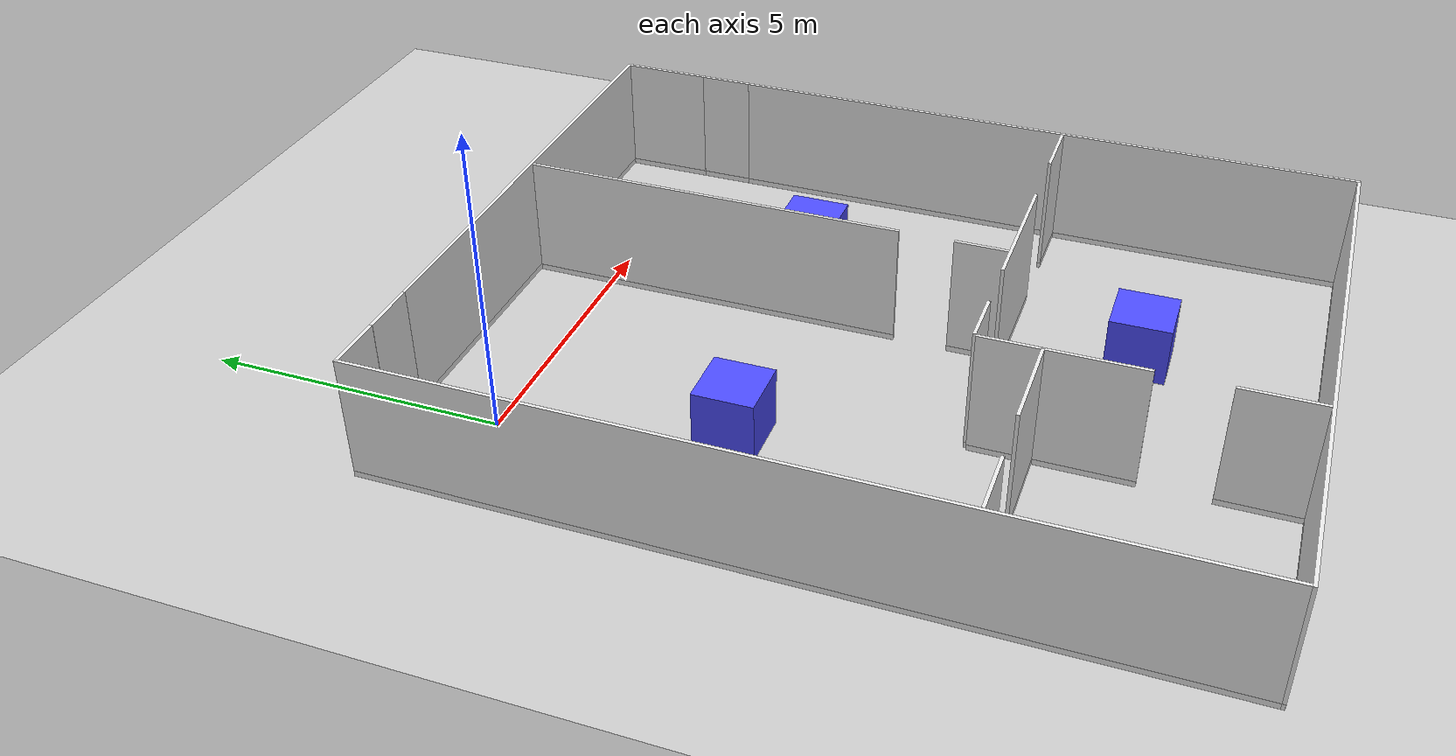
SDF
<sdf version="1.6">
 <world name="default">
  <light name="sun" type="directional">
   <pose>0 0 10 0 -0 0</pose>
   <diffuse>0.8 0.8 0.8 1</diffuse>
   <specular>0.1 0.1 0.1 1</specular>
   <attenuation>
    <range>1000</range>
    <constant>0.9</constant>
    <linear>0.01</linear>
    <quadratic>0.001</quadratic>
   </attenuation>
   <direction>-0.5 0.5 -1</direction>
  </light>
  <model name="ground_plane">
   <static>1</static>
   <link name="link">
    <collision name="collision">
     <geometry><plane><normal>0 0 1</normal><size>100 100</size></plane></geometry>
     <surface><friction><ode><mu>100</mu><mu2>50</mu2></ode></friction></surface>
    </collision>
    <visual name="visual">
     <cast_shadows>0</cast_shadows>
     <geometry><plane><normal>0 0 1</normal><size>100 100</size></plane></geometry>
     <material>
      <script><uri>file://media/materials/scripts/gazebo.material</uri><name>Gazebo/Grey</name></script>
     </material>
    </visual>
   </link>
  </model>
  <gravity>0 0 -9.8</gravity>
  <magnetic_field>6e-06 2.3e-05 -4.2e-05</magnetic_field>
  <atmosphere type="adiabatic"/>
  <physics name="default_physics" default="0" type="ode">
   <max_step_size>0.001</max_step_size>
   <real_time_factor>1</real_time_factor>
   <real_time_update_rate>1000</real_time_update_rate>
  </physics>
  <scene><ambient>0.4 0.4 0.4 1</ambient><background>0.7 0.7 0.7 1</background><shadows>1</shadows></scene>
  <spherical_coordinates>
   <surface_model>EARTH_WGS84</surface_model>
   <latitude_deg>0</latitude_deg>
   <longitude_deg>0</longitude_deg>
   <elevation>0</elevation>
   <heading_deg>0</heading_deg>
  </spherical_coordinates>
  <model name="full_outside_wall">
   <link name="link">
    <inertial>
     <mass>50</mass>
     <inertia><ixx>1</ixx><ixy>0</ixy><ixz>0</ixz><iyy>1</iyy><iyz>0</iyz><izz>1</izz></inertia>
    </inertial>
    <visual name="x00_13y00_bottom_frame">
     <pose>5.0375 -0.0275 0.05 0 -0 0</pose>
     <geometry><box><size>10.185 0.055 0.1</size></box></geometry>
     <material>
      <script><uri>model://base_materials/color/scripts</uri><name>hsr_color/white</name></script>
     </material>
    </visual>
    <collision name="x00_13y00_collision_bottom_frame">
     <pose>5.0375 -0.0275 0.05 0 -0 0</pose>
     <geometry><box><size>10.185 0.055 0.1</size></box></geometry>
    </collision>
    <visual name="wall_x00_13y00">
     <pose>5.0375 -0.0275 1.095 0 -0 0</pose>
     <geometry><box><size>10.185 0.055 1.99</size></box></geometry>
     <material>
      <script>
       <uri>model://base_materials/wall/scripts</uri>
       <uri>model://base_materials/wall/textures</uri>
       <name>wall/white_noise</name>
      </script>
     </material>
    </visual>
    <collision name="wall_x00_13y00">
     <pose>5.0375 -0.002 1.095 0 -0 0</pose>
     <geometry><box><size>10.08 0.055 1.99</size></box></geometry>
    </collision>
    <visual name="x00y00_15_bottom_frame">
     <pose>-0.0275 6.59 0.05 0 -0 0</pose>
     <geometry><box><size>0.055 13.29 0.1</size></box></geometry>
     <material>
      <script><uri>model://base_materials/color/scripts</uri><name>hsr_color/white</name></script>
     </material>
    </visual>
    <collision name="x00y00_15_collision_bottom_frame">
     <pose>-0.0275 6.59 0.05 0 -0 0</pose>
     <geometry><box><size>0.055 13.29 0.1</size></box></geometry>
    </collision>
    <visual name="wall_x00y00_15">
     <pose>-0.0275 6.59 1.095 0 -0 0</pose>
     <geometry><box><size>0.055 13.29 1.99</size></box></geometry>
     <material>
      <script>
       <uri>model://base_materials/wall/scripts</uri>
       <uri>model://base_materials/wall/textures</uri>
       <name>wall/white_noise</name>
      </script>
     </material>
    </visual>
    <collision name="wall_x00y00_x00y15">
     <pose>-0.002 6.59 1.095 0 -0 0</pose>
     <geometry><box><size>0.002 13.29 1.99</size></box></geometry>
    </collision>
    <visual name="x13y00_12_bottom_frame">
     <pose>10.1025 5.3725 0.05 0 -0 0</pose>
     <geometry><box><size>0.055 10.855 0.1</size></box></geometry>
     <material>
      <script><uri>model://base_materials/color/scripts</uri><name>hsr_color/white</name></script>
     </material>
    </visual>
    <collision name="x13y00_12_collision_bottom_frame">
     <pose>10.1025 5.3725 0.05 0 -0 0</pose>
     <geometry><box><size>0.055 10.855 0.1</size></box></geometry>
    </collision>
    <visual name="wall_x13y00_12">
     <pose>10.1025 5.3725 1.095 0 -0 0</pose>
     <geometry><box><size>0.055 10.855 1.99</size></box></geometry>
     <material>
      <script>
       <uri>model://base_materials/wall/scripts</uri>
       <uri>model://base_materials/wall/textures</uri>
       <name>wall/white_noise</name>
      </script>
     </material>
    </visual>
    <collision name="wall_x13y00_12">
     <pose>10.1025 5.3725 1.095 0 -0 0</pose>
     <geometry><box><size>0.055 10.855 1.99</size></box></geometry>
    </collision>
    <visual name="x13y14_16_bottom_frame">
     <pose>10.1025 12.4675 0.05 0 -0 0</pose>
     <geometry><box><size>0.055 1.535 0.1</size></box></geometry>
     <material>
      <script><uri>model://base_materials/color/scripts</uri><name>hsr_color/white</name></script>
     </material>
    </visual>
    <collision name="x13y14_16_collision_bottom_frame">
     <pose>10.1025 12.4675 0.05 0 -0 0</pose>
     <geometry><box><size>0.055 1.535 0.1</size></box></geometry>
    </collision>
    <visual name="wall_x13y14_x13y16">
     <pose>10.1025 12.4675 1.095 0 -0 0</pose>
     <geometry><box><size>0.055 1.535 1.99</size></box></geometry>
     <material>
      <script>
       <uri>model://base_materials/wall/scripts</uri>
       <uri>model://base_materials/wall/textures</uri>
       <name>wall/white_noise</name>
      </script>
     </material>
    </visual>
    <collision name="wall_x13y14_x13y16">
     <pose>10.1025 12.4675 1.095 0 -0 0</pose>
     <geometry><box><size>0.055 1.535 1.99</size></box></geometry>
    </collision>
    <visual name="x00_01y16_bottom_frame">
     <pose>0.4225 13.2075 0.05 0 -0 0</pose>
     <geometry><box><size>0.955 0.055 0.1</size></box></geometry>
     <material>
      <script><uri>model://base_materials/color/scripts</uri><name>hsr_color/white</name></script>
     </material>
    </visual>
    <collision name="x00_01y16_collision_bottom_frame">
     <pose>0.4225 13.2075 0.05 0 -0 0</pose>
     <geometry><box><size>0.955 0.055 0.1</size></box></geometry>
    </collision>
    <visual name="wall_x00_01y16">
     <pose>0.4225 13.2075 1.095 0 -0 0</pose>
     <geometry><box><size>0.955 0.055 1.99</size></box></geometry>
     <material>
      <script>
       <uri>model://base_materials/wall/scripts</uri>
       <uri>model://base_materials/wall/textures</uri>
       <name>wall/white_noise</name>
      </script>
     </material>
    </visual>
    <collision name="wall_x00_x01y16">
     <pose>0.4225 13.2075 1.095 0 -0 0</pose>
     <geometry><box><size>0.955 0.055 1.99</size></box></geometry>
    </collision>
    <visual name="x03_13y16_bottom_frame">
     <pose>5.965 13.2075 0.05 0 -0 0</pose>
     <geometry><box><size>8.33 0.05 0.1</size></box></geometry>
     <material>
      <script><uri>model://base_materials/color/scripts</uri><name>hsr_color/white</name></script>
     </material>
    </visual>
    <collision name="x03_13y16_collision_bottom_frame">
     <pose>5.965 13.2075 0.05 0 -0 0</pose>
     <geometry><box><size>8.33 0.05 0.1</size></box></geometry>
    </collision>
    <visual name="wall_x03_13y16">
     <pose>5.965 13.2075 1.095 0 -0 0</pose>
     <geometry><box><size>8.33 0.055 1.99</size></box></geometry>
     <material>
      <script>
       <uri>model://base_materials/wall/scripts</uri>
       <uri>model://base_materials/wall/textures</uri>
       <name>wall/white_noise</name>
      </script>
     </material>
    </visual>
    <collision name="wall_x03_13y16">
     <pose>5.965 13.2075 1.095 0 -0 0</pose>
     <geometry><box><size>8.33 0.055 1.99</size></box></geometry>
    </collision>
    <velocity_decay><linear>0</linear><angular>0</angular></velocity_decay>
   </link>
   <static>1</static>
   <pose>-1.74055 -11.8334 0 0 -0 0</pose>
  </model>
  <model name="full_inside_wall">
   <link name="link">
    <inertial>
     <mass>50</mass>
     <inertia><ixx>1</ixx><ixy>0</ixy><ixz>0</ixz><iyy>1</iyy><iyz>0</iyz><izz>1</izz></inertia>
    </inertial>
    <visual name="x05y01_08_bottom_frame">
     <pose>4.075 3.215 0.05 0 -0 0</pose>
     <geometry><box><size>0.055 6.43 0.1</size></box></geometry>
     <material>
      <script><uri>model://base_materials/color/scripts</uri><name>hsr_color/white</name></script>
     </material>
    </visual>
    <collision name="x05y01_08_collision_bottom_frame">
     <pose>4.075 3.215 0.05 0 -0 0</pose>
     <geometry><box><size>0.055 6.43 0.1</size></box></geometry>
    </collision>
    <visual name="x05y01_08_wall">
     <pose>4.075 3.215 1.095 0 -0 0</pose>
     <geometry><box><size>0.055 6.43 1.99</size></box></geometry>
     <material>
      <script>
       <uri>model://base_materials/wall/scripts</uri>
       <uri>model://base_materials/wall/textures</uri>
       <name>wall/white_noise</name>
      </script>
     </material>
    </visual>
    <collision name="x05y01_08_collision_wall">
     <pose>4.075 3.215 1.095 0 -0 0</pose>
     <geometry><box><size>0.055 6.43 1.99</size></box></geometry>
    </collision>
    <visual name="x05y10_bottom_frame">
     <pose>4.075 7.78 0.05 0 -0 0</pose>
     <geometry><box><size>0.055 0.9 0.1</size></box></geometry>
     <material>
      <script><uri>model://base_materials/color/scripts</uri><name>hsr_color/white</name></script>
     </material>
    </visual>
    <collision name="x05y10_collision_bottom_frame">
     <pose>4.075 7.78 0.05 0 -0 0</pose>
     <geometry><box><size>0.055 0.9 0.1</size></box></geometry>
    </collision>
    <visual name="x05y10_wall">
     <pose>4.075 7.78 1.095 0 -0 0</pose>
     <geometry><box><size>0.055 0.9 1.99</size></box></geometry>
     <material>
      <script>
       <uri>model://base_materials/wall/scripts</uri>
       <uri>model://base_materials/wall/textures</uri>
       <name>wall/white_noise</name>
      </script>
     </material>
    </visual>
    <collision name="x05y10_collision_wall">
     <pose>4.075 7.78 1.095 0 -0 0</pose>
     <geometry><box><size>0.055 0.9 1.99</size></box></geometry>
    </collision>
    <visual name="x01_02_y09_bottom_frame">
     <pose>0.55 8.23 0.05 0 -0 1.5708</pose>
     <geometry><box><size>0.055 1.1 0.1</size></box></geometry>
     <material>
      <script><uri>model://base_materials/color/scripts</uri><name>hsr_color/white</name></script>
     </material>
    </visual>
    <collision name="x01_02_y09_collision_bottom_frame">
     <pose>0.55 8.23 0.05 0 -0 1.5708</pose>
     <geometry><box><size>0.055 1.1 0.1</size></box></geometry>
    </collision>
    <visual name="x01_02_y09_wall">
     <pose>0.55 8.23 1.095 0 -0 1.5708</pose>
     <geometry><box><size>0.055 1.1 1.99</size></box></geometry>
     <material>
      <script>
       <uri>model://base_materials/wall/scripts</uri>
       <uri>model://base_materials/wall/textures</uri>
       <name>wall/white_noise</name>
      </script>
     </material>
    </visual>
    <collision name="x01_02_y09_collision_wall">
     <pose>0.55 8.23 1.095 0 -0 1.5708</pose>
     <geometry><box><size>0.055 1.1 1.99</size></box></geometry>
    </collision>
    <visual name="x04_07_y09_bottom_frame">
     <pose>3.42 8.23 0.05 0 -0 1.5708</pose>
     <geometry><box><size>0.055 2.44 0.1</size></box></geometry>
     <material>
      <script><uri>model://base_materials/color/scripts</uri><name>hsr_color/white</name></script>
     </material>
    </visual>
    <collision name="x04_07_y09_collision_bottom_frame">
     <pose>3.42 8.23 0.05 0 -0 1.5708</pose>
     <geometry><box><size>0.055 2.44 0.1</size></box></geometry>
    </collision>
    <visual name="x04_07_y09_wall">
     <pose>3.42 8.23 1.095 0 -0 1.5708</pose>
     <geometry><box><size>0.055 2.44 1.99</size></box></geometry>
     <material>
      <script>
       <uri>model://base_materials/wall/scripts</uri>
       <uri>model://base_materials/wall/textures</uri>
       <name>wall/white_noise</name>
      </script>
     </material>
    </visual>
    <collision name="x04_07_y09_collision_wall">
     <pose>3.42 8.23 1.095 0 -0 1.5708</pose>
     <geometry><box><size>0.055 2.44 1.99</size></box></geometry>
    </collision>
    <visual name="x08y10a_bottom_frame">
     <pose>5.9925 8.23 0.05 0 -0 1.5708</pose>
     <geometry><box><size>0.055 0.9 0.1</size></box></geometry>
     <material>
      <script><uri>model://base_materials/color/scripts</uri><name>hsr_color/white</name></script>
     </material>
    </visual>
    <collision name="x08y10a_collision_bottom_frame">
     <pose>5.9925 8.23 0.05 0 -0 1.5708</pose>
     <geometry><box><size>0.055 0.9 0.1</size></box></geometry>
    </collision>
    <visual name="x08y10a_wall">
     <pose>5.9925 8.23 1.095 0 -0 1.5708</pose>
     <geometry><box><size>0.055 0.9 1.99</size></box></geometry>
     <material>
      <script>
       <uri>model://base_materials/wall/scripts</uri>
       <uri>model://base_materials/wall/textures</uri>
       <name>wall/white_noise</name>
      </script>
     </material>
    </visual>
    <collision name="x08y10a_collision_wall">
     <pose>5.9925 8.23 1.095 0 -0 1.5708</pose>
     <geometry><box><size>0.055 0.9 1.99</size></box></geometry>
    </collision>
    <visual name="x08y10a_bottom_frame">
     <pose>5.9925 8.23 0.05 0 -0 1.5708</pose>
     <geometry><box><size>0.055 0.9 0.1</size></box></geometry>
     <material>
      <script><uri>model://base_materials/color/scripts</uri><name>hsr_color/white</name></script>
     </material>
    </visual>
    <collision name="x08y10a_collision_bottom_frame">
     <pose>5.9925 8.23 0.05 0 -0 1.5708</pose>
     <geometry><box><size>0.055 0.9 0.1</size></box></geometry>
    </collision>
    <visual name="x08y10a_wall">
     <pose>5.9925 8.23 1.095 0 -0 1.5708</pose>
     <geometry><box><size>0.055 0.9 1.99</size></box></geometry>
     <material>
      <script>
       <uri>model://base_materials/wall/scripts</uri>
       <uri>model://base_materials/wall/textures</uri>
       <name>wall/white_noise</name>
      </script>
     </material>
    </visual>
    <collision name="x08y10a_collision_wall">
     <pose>5.9925 8.23 1.095 0 -0 1.5708</pose>
     <geometry><box><size>0.055 0.9 1.99</size></box></geometry>
    </collision>
    <visual name="x08y14_15_bottom_frame">
     <pose>6.47 12.54 0.05 0 -0 0</pose>
     <geometry><box><size>0.055 1.28 0.1</size></box></geometry>
     <material>
      <script><uri>model://base_materials/color/scripts</uri><name>hsr_color/white</name></script>
     </material>
    </visual>
    <collision name="x08y14_15_collision_bottom_frame">
     <pose>6.47 12.54 0.05 0 -0 0</pose>
     <geometry><box><size>0.055 1.28 0.1</size></box></geometry>
    </collision>
    <visual name="x08y14_15_wall">
     <pose>6.47 12.54 1.095 0 -0 0</pose>
     <geometry><box><size>0.055 1.28 1.99</size></box></geometry>
     <material>
      <script>
       <uri>model://base_materials/wall/scripts</uri>
       <uri>model://base_materials/wall/textures</uri>
       <name>wall/white_noise</name>
      </script>
     </material>
    </visual>
    <collision name="x08y14_15_collision_wall">
     <pose>6.47 12.54 1.095 0 -0 0</pose>
     <geometry><box><size>0.055 1.28 1.99</size></box></geometry>
    </collision>
    <visual name="x08y10b_12_bottom_frame">
     <pose>6.47 9.52875 0.05 0 -0 0</pose>
     <geometry><box><size>0.055 2.5425 0.1</size></box></geometry>
     <material>
      <script><uri>model://base_materials/color/scripts</uri><name>hsr_color/white</name></script>
     </material>
    </visual>
    <collision name="x08y10b_12_collision_bottom_frame">
     <pose>6.47 9.52875 0.05 0 -0 0</pose>
     <geometry><box><size>0.055 2.5425 0.1</size></box></geometry>
    </collision>
    <visual name="x08y10b_12_wall">
     <pose>6.47 9.52875 1.095 0 -0 0</pose>
     <geometry><box><size>0.055 2.5425 1.99</size></box></geometry>
     <material>
      <script>
       <uri>model://base_materials/wall/scripts</uri>
       <uri>model://base_materials/wall/textures</uri>
       <name>wall/white_noise</name>
      </script>
     </material>
    </visual>
    <collision name="x08y10b_12_collision_wall">
     <pose>6.47 9.52875 1.095 0 -0 0</pose>
     <geometry><box><size>0.055 2.5425 1.99</size></box></geometry>
    </collision>
    <visual name="x08_09y11b_bottom_frame">
     <pose>7.284 9.23 0.05 0 -0 1.5708</pose>
     <geometry><box><size>0.055 1.632 0.1</size></box></geometry>
     <material>
      <script><uri>model://base_materials/color/scripts</uri><name>hsr_color/white</name></script>
     </material>
    </visual>
    <collision name="x08_09y11b_collision_bottom_frame">
     <pose>7.284 9.23 0.05 0 -0 1.5708</pose>
     <geometry><box><size>0.055 1.632 0.1</size></box></geometry>
    </collision>
    <visual name="x08_09y11b_wall">
     <pose>7.284 9.23 1.095 0 -0 1.5708</pose>
     <geometry><box><size>0.055 1.632 1.99</size></box></geometry>
     <material>
      <script>
       <uri>model://base_materials/wall/scripts</uri>
       <uri>model://base_materials/wall/textures</uri>
       <name>wall/white_noise</name>
      </script>
     </material>
    </visual>
    <collision name="x08_09y11b_collision_wall">
     <pose>7.284 9.23 1.095 0 -0 1.5708</pose>
     <geometry><box><size>0.055 1.632 1.99</size></box></geometry>
    </collision>
    <visual name="x11_12y11_bottom_frame">
     <pose>9.5375 9.23 0.05 0 -0 1.5708</pose>
     <geometry><box><size>0.055 1.075 0.1</size></box></geometry>
     <material>
      <script><uri>model://base_materials/color/scripts</uri><name>hsr_color/white</name></script>
     </material>
    </visual>
    <collision name="x11_12y11_collision_bottom_frame">
     <pose>9.5375 9.23 0.05 0 -0 1.5708</pose>
     <geometry><box><size>0.055 1.075 0.1</size></box></geometry>
    </collision>
    <visual name="x11_12y11_wall">
     <pose>9.5375 9.23 1.095 0 -0 1.5708</pose>
     <geometry><box><size>0.055 1.075 1.99</size></box></geometry>
     <material>
      <script>
       <uri>model://base_materials/wall/scripts</uri>
       <uri>model://base_materials/wall/textures</uri>
       <name>wall/white_noise</name>
      </script>
     </material>
    </visual>
    <collision name="x11_12y11_collision_wall">
     <pose>9.5375 9.23 1.095 0 -0 1.5708</pose>
     <geometry><box><size>0.055 1.075 1.99</size></box></geometry>
    </collision>
    <velocity_decay><linear>0</linear><angular>0</angular></velocity_decay>
   </link>
   <static>1</static>
   <pose>8.33769 1.33864 0 0 -0 3.14132</pose>
  </model>
  <model name="static_box_2">
   <link name="link">
    <inertial>
     <mass>100</mass>
     <inertia>
      <ixx>0.166667</ixx>
      <ixy>0</ixy>
      <ixz>0</ixz>
      <iyy>0.166667</iyy>
      <iyz>0</iyz>
      <izz>0.166667</izz>
     </inertia>
    </inertial>
    <visual name="visual">
     <geometry><box><size>1 1 1</size></box></geometry>
     <material>
      <script><name>Gazebo/Grey</name><uri>file://media/materials/scripts/gazebo.material</uri></script>
      <ambient>0.3 0.3 1 1</ambient>
      <diffuse>0.7 0.7 0.7 1</diffuse>
      <specular>0.01 0.01 0.01 1</specular>
      <emissive>0 0 0 1</emissive>
      <shader type="vertex"><normal_map>__default__</normal_map></shader>
     </material>
    </visual>
    <collision name="collision">
     <geometry><box><size>1 1 1</size></box></geometry>
     <surface>
      <friction>
       <ode><mu>1</mu><mu2>1</mu2><fdir1>0 0 0</fdir1><slip1>0</slip1><slip2>0</slip2></ode>
       <torsional>
        <coefficient>1</coefficient>
        <patch_radius>0</patch_radius>
        <surface_radius>0</surface_radius>
        <use_patch_radius>1</use_patch_radius>
        <ode><slip>0</slip></ode>
       </torsional>
      </friction>
      <bounce><restitution_coefficient>0</restitution_coefficient><threshold>1e+06</threshold></bounce>
      <contact>
       <collide_without_contact>0</collide_without_contact>
       <collide_without_contact_bitmask>1</collide_without_contact_bitmask>
       <collide_bitmask>1</collide_bitmask>
       <ode>
        <soft_cfm>0</soft_cfm>
        <soft_erp>0.2</soft_erp>
        <kp>1e+13</kp>
        <kd>1</kd>
        <max_vel>0.01</max_vel>
        <min_depth>0</min_depth>
       </ode>
       <bullet>
        <split_impulse>1</split_impulse>
        <split_impulse_penetration_threshold>-0.01</split_impulse_penetration_threshold>
        <soft_cfm>0</soft_cfm>
        <soft_erp>0.2</soft_erp>
        <kp>1e+13</kp>
        <kd>1</kd>
       </bullet>
      </contact>
     </surface>
    </collision>
   </link>
   <static>0</static>
   <pose>6.05243 -3.06073 0.499994 5e-06 1e-05 2.4e-05</pose>
  </model>
  <model name="static_box_3">
   <link name="link">
    <inertial>
     <mass>100</mass>
     <inertia>
      <ixx>0.166667</ixx>
      <ixy>0</ixy>
      <ixz>0</ixz>
      <iyy>0.166667</iyy>
      <iyz>0</iyz>
      <izz>0.166667</izz>
     </inertia>
    </inertial>
    <visual name="visual">
     <geometry><box><size>1 1 1</size></box></geometry>
     <material>
      <script><name>Gazebo/Grey</name><uri>file://media/materials/scripts/gazebo.material</uri></script>
      <ambient>0.3 0.3 1 1</ambient>
      <diffuse>0.7 0.7 0.7 1</diffuse>
      <specular>0.01 0.01 0.01 1</specular>
      <emissive>0 0 0 1</emissive>
      <shader type="vertex"><normal_map>__default__</normal_map></shader>
     </material>
    </visual>
    <collision name="collision">
     <geometry><box><size>1 1 1</size></box></geometry>
     <surface>
      <friction>
       <ode><mu>1</mu><mu2>1</mu2><fdir1>0 0 0</fdir1><slip1>0</slip1><slip2>0</slip2></ode>
       <torsional>
        <coefficient>1</coefficient>
        <patch_radius>0</patch_radius>
        <surface_radius>0</surface_radius>
        <use_patch_radius>1</use_patch_radius>
        <ode><slip>0</slip></ode>
       </torsional>
      </friction>
      <bounce><restitution_coefficient>0</restitution_coefficient><threshold>1e+06</threshold></bounce>
      <contact>
       <collide_without_contact>0</collide_without_contact>
       <collide_without_contact_bitmask>1</collide_without_contact_bitmask>
       <collide_bitmask>1</collide_bitmask>
       <ode>
        <soft_cfm>0</soft_cfm>
        <soft_erp>0.2</soft_erp>
        <kp>1e+13</kp>
        <kd>1</kd>
        <max_vel>0.01</max_vel>
        <min_depth>0</min_depth>
       </ode>
       <bullet>
        <split_impulse>1</split_impulse>
        <split_impulse_penetration_threshold>-0.01</split_impulse_penetration_threshold>
        <soft_cfm>0</soft_cfm>
        <soft_erp>0.2</soft_erp>
        <kp>1e+13</kp>
        <kd>1</kd>
       </bullet>
      </contact>
     </surface>
    </collision>
   </link>
   <static>0</static>
   <pose>1.00509 -3.5168 0.499993 0 9e-06 0.002576</pose>
  </model>
  <model name="static_box_4">
   <link name="link">
    <inertial>
     <mass>100</mass>
     <inertia>
      <ixx>0.166667</ixx>
      <ixy>0</ixy>
      <ixz>0</ixz>
      <iyy>0.166667</iyy>
      <iyz>0</iyz>
      <izz>0.166667</izz>
     </inertia>
    </inertial>
    <visual name="visual">
     <geometry><box><size>1 1 1</size></box></geometry>
     <material>
      <script><name>Gazebo/Grey</name><uri>file://media/materials/scripts/gazebo.material</uri></script>
      <ambient>0.3 0.3 1 1</ambient>
      <diffuse>0.7 0.7 0.7 1</diffuse>
      <specular>0.01 0.01 0.01 1</specular>
      <emissive>0 0 0 1</emissive>
      <shader type="vertex"><normal_map>__default__</normal_map></shader>
     </material>
    </visual>
    <collision name="collision">
     <geometry><box><size>1 1 1</size></box></geometry>
     <surface>
      <friction>
       <ode><mu>1</mu><mu2>1</mu2><fdir1>0 0 0</fdir1><slip1>0</slip1><slip2>0</slip2></ode>
       <torsional>
        <coefficient>1</coefficient>
        <patch_radius>0</patch_radius>
        <surface_radius>0</surface_radius>
        <use_patch_radius>1</use_patch_radius>
        <ode><slip>0</slip></ode>
       </torsional>
      </friction>
      <bounce><restitution_coefficient>0</restitution_coefficient><threshold>1e+06</threshold></bounce>
      <contact>
       <collide_without_contact>0</collide_without_contact>
       <collide_without_contact_bitmask>1</collide_without_contact_bitmask>
       <collide_bitmask>1</collide_bitmask>
       <ode>
        <soft_cfm>0</soft_cfm>
        <soft_erp>0.2</soft_erp>
        <kp>1e+13</kp>
        <kd>1</kd>
        <max_vel>0.01</max_vel>
        <min_depth>0</min_depth>
       </ode>
       <bullet>
        <split_impulse>1</split_impulse>
        <split_impulse_penetration_threshold>-0.01</split_impulse_penetration_threshold>
        <soft_cfm>0</soft_cfm>
        <soft_erp>0.2</soft_erp>
        <kp>1e+13</kp>
        <kd>1</kd>
       </bullet>
      </contact>
     </surface>
    </collision>
   </link>
   <static>0</static>
   <pose>4.98839 -8.99638 0.499993 -0 -1.2e-05 0.002175</pose>
  </model>
  <model name="full_wall_55_920_2090">
   <link name="link">
    <inertial>
     <mass>50</mass>
     <inertia><ixx>1</ixx><ixy>0</ixy><ixz>0</ixz><iyy>1</iyy><iyz>0</iyz><izz>1</izz></inertia>
    </inertial>
    <visual name="bottom_frame">
     <pose>0 0 0.05 0 -0 0</pose>
     <geometry><box><size>0.055 0.92 0.1</size></box></geometry>
     <material>
      <script><uri>model://base_materials/color/scripts</uri><name>hsr_color/white</name></script>
     </material>
    </visual>
    <collision name="collision_bottom_frame">
     <pose>0 0 0.05 0 -0 0</pose>
     <geometry><box><size>0.055 0.92 0.1</size></box></geometry>
    </collision>
    <visual name="wall">
     <pose>0 0 1.095 0 -0 0</pose>
     <geometry><box><size>0.055 0.92 1.99</size></box></geometry>
     <material>
      <script>
       <uri>model://base_materials/wall/scripts</uri>
       <uri>model://base_materials/wall/textures</uri>
       <name>wall/white_noise</name>
      </script>
     </material>
    </visual>
    <collision name="collision_wall">
     <pose>0 0 1.095 0 -0 0</pose>
     <geometry><box><size>0.055 0.92 1.99</size></box></geometry>
    </collision>
    <velocity_decay><linear>0</linear><angular>0</angular></velocity_decay>
   </link>
   <static>1</static>
   <pose>8.36232 -0.582065 0 0 -0 0</pose>
  </model>
  <model name="full_wall_55_920_2090_0">
   <link name="link">
    <inertial>
     <mass>50</mass>
     <inertia><ixx>1</ixx><ixy>0</ixy><ixz>0</ixz><iyy>1</iyy><iyz>0</iyz><izz>1</izz></inertia>
    </inertial>
    <visual name="bottom_frame">
     <pose>0 0 0.05 0 -0 0</pose>
     <geometry><box><size>0.055 0.92 0.1</size></box></geometry>
     <material>
      <script><uri>model://base_materials/color/scripts</uri><name>hsr_color/white</name></script>
     </material>
    </visual>
    <collision name="collision_bottom_frame">
     <pose>0 0 0.05 0 -0 0</pose>
     <geometry><box><size>0.055 0.92 0.1</size></box></geometry>
    </collision>
    <visual name="wall">
     <pose>0 0 1.095 0 -0 0</pose>
     <geometry><box><size>0.055 0.92 1.99</size></box></geometry>
     <material>
      <script>
       <uri>model://base_materials/wall/scripts</uri>
       <uri>model://base_materials/wall/textures</uri>
       <name>wall/white_noise</name>
      </script>
     </material>
    </visual>
    <collision name="collision_wall">
     <pose>0 0 1.095 0 -0 0</pose>
     <geometry><box><size>0.055 0.92 1.99</size></box></geometry>
    </collision>
    <velocity_decay><linear>0</linear><angular>0</angular></velocity_decay>
   </link>
   <static>1</static>
   <pose>-0.391738 1.37269 0 0 -0 1.5726</pose>
  </model>
 </world>
</sdf>
